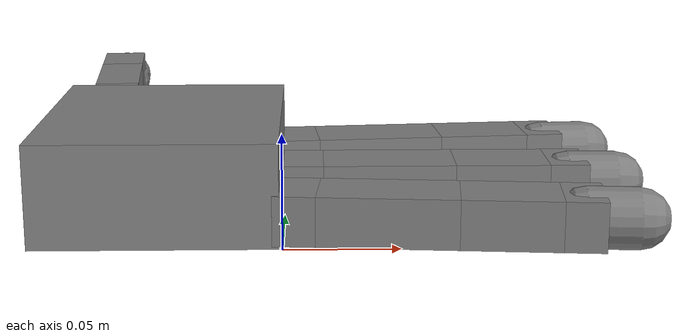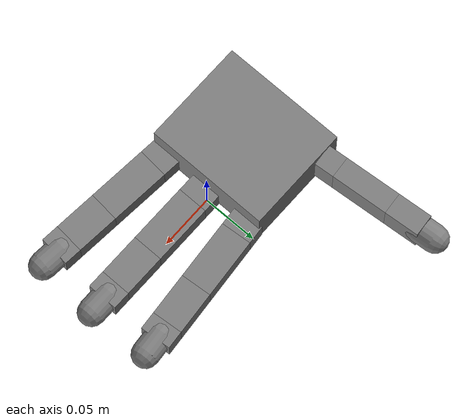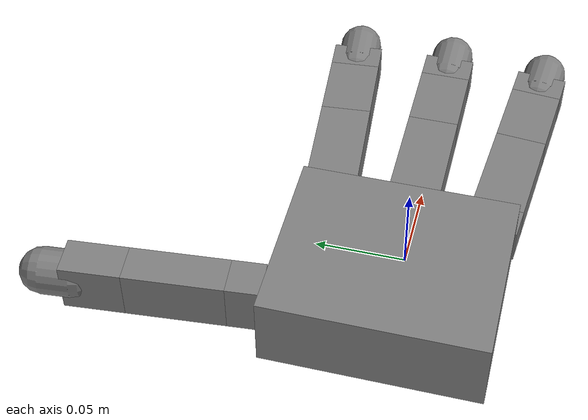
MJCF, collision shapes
<?xml version='1.0' encoding='utf-8'?>
<mujoco model="allegro_right">

    <compiler angle="radian" meshdir="assets" autolimits="true" />

    <option cone="elliptic" impratio="10" />

    <default>

      <default class="allegro_right">

        <joint axis="0 1 0" damping="0.1" />

        <position kp="1" />

        <geom density="800" />
      </default>

      <default class="visual">
        <geom type="mesh" contype="0" conaffinity="0" group="2" material="black" />
        <default class="palm_visual">
          <geom mesh="base_link" />
        </default>
        <default class="base_visual">
          <geom mesh="link_0.0" />
        </default>
        <default class="proximal_visual">
          <geom mesh="link_1.0" />
        </default>
        <default class="medial_visual">
          <geom mesh="link_2.0" />
        </default>
        <default class="distal_visual">
          <geom mesh="link_3.0" />
        </default>
        <default class="fingertip_visual">
          <geom pos="0 0 0.0267" material="white" mesh="link_3.0_tip" />
        </default>
        <default class="thumbtip_visual">
          <geom pos="0 0 0.0423" material="white" mesh="link_15.0_tip" />
        </default>
      </default>

      <default class="collision">

        <geom group="3" type="box" contype="3" conaffinity="1" friction="1 0.005 0.0001" density="800" />

        <default class="palm_collision">
          <geom size="0.0204 0.0565 0.0475" pos="-0.0093 0 -0.0475" />
        </default>

        <default class="base_collision">
          <geom size="0.0098 0.01375 0.0082" pos="0 0 0.0082" />
          <default class="thumb_base_collision">
            <geom size="0.0179 0.017 0.02275" pos="-0.0179 0.009 0.0145" />
          </default>
        </default>

        <default class="proximal_collision">
          <geom size="0.0098 0.01375 0.027" pos="0 0 0.027" />
          <default class="thumb_proximal_collision">
            <geom size="0.0098 0.01375 0.00885" pos="0 0 0.00885" />
          </default>
        </default>

        <default class="medial_collision">
          <geom size="0.0098 0.01375 0.0192" pos="0 0 0.0192" />
          <default class="thumb_medial_collision">
            <geom size="0.0098 0.01375 0.0257" pos="0 0 0.0257" />
          </default>
        </default>

        <default class="distal_collision">
          <geom size="0.0098 0.01375 0.008" pos="0 0 0.008" />
          <default class="thumb_distal_collision">
            <geom size="0.0098 0.01375 0.0157" pos="0 0 0.0157" />
          </default>
        </default>

        <default class="fingertip_collision">
          <geom type="capsule" size="0.012 0.01" pos="0 0 0.019" />
          <default class="thumbtip_collision">
            <geom type="capsule" size="0.012 0.008" pos="0 0 0.035" />
          </default>
        </default>
      </default>

      <default class="base">
        <joint axis="0 0 1" range="-0.47 0.47" />
        <position ctrlrange="-0.47 0.47" />
      </default>

      <default class="proximal">
        <joint range="-0.196 1.61" />
        <position ctrlrange="-0.196 1.61" />
      </default>

      <default class="medial">
        <joint range="-0.174 1.709" />
        <position ctrlrange="-0.174 1.709" />
      </default>

      <default class="distal">
        <joint range="-0.227 1.618" />
        <position ctrlrange="-0.227 1.618" />
      </default>

      <default class="thumb_base">
        <joint axis="-1 0 0" range="0.263 1.396" />
        <position ctrlrange="0.263 1.396" />
      </default>

      <default class="thumb_proximal">
        <joint axis="0 0 1" range="-0.105 1.163" />
        <position ctrlrange="-0.105 1.163" />
      </default>

      <default class="thumb_medial">
        <joint range="-0.189 1.644" />
        <position ctrlrange="-0.189 1.644" />
      </default>

      <default class="thumb_distal">
        <joint range="-0.162 1.719" />
        <position ctrlrange="-0.162 1.719" />
      </default>

    </default>

    <asset>
      <material name="black" rgba="0.2 0.2 0.2 1" />
      <material name="white" rgba="0.9 0.9 0.9 1" />

      <mesh file="base_link.stl" />
      <mesh file="link_0.0.stl" />
      <mesh file="link_1.0.stl" />
      <mesh file="link_2.0.stl" />
      <mesh file="link_3.0.stl" />
      <mesh file="link_3.0_tip.stl" />
      <mesh file="link_12.0_right.stl" />
      <mesh file="link_13.0.stl" />
      <mesh file="link_14.0.stl" />
      <mesh file="link_15.0.stl" />
      <mesh file="link_15.0_tip.stl" />
    </asset>

    <worldbody>

      <body name="palm" pos="0 0 0.03" quat="-0.7071067811865475 8.659560562354933e-17 -0.7071067811865476 -8.659560562354933e-17" childclass="allegro_right">
        <joint name="hand_root" type="free" />

        <geom class="palm_visual" mesh="base_link" />
        <geom class="palm_collision" />

        <body name="ff_base" pos="0 0.0435 -0.001542" quat="0.999048 -0.0436194 0 0">
          <joint name="ffj0" class="base" />
          <geom class="base_visual" />
          <geom class="base_collision" />
          <body name="ff_proximal" pos="0 0 0.0164">
            <joint name="ffj1" class="proximal" />
            <geom class="proximal_visual" />
            <geom class="proximal_collision" />
            <body name="ff_medial" pos="0 0 0.054">
              <joint name="ffj2" class="medial" />
              <geom class="medial_visual" />
              <geom class="medial_collision" />
              <body name="ff_distal" pos="0 0 0.0384">
                <joint name="ffj3" class="distal" />
                <geom class="distal_visual" />
                <geom class="distal_collision" />
                <body name="ff_tip">
                  <geom class="fingertip_visual" />
                  <geom class="fingertip_collision" />
                </body>
              </body>
            </body>
          </body>
        </body>

        <body name="mf_base" pos="0 0 0.0007">
          <joint name="mfj0" class="base" />
          <geom class="base_visual" />
          <geom class="base_collision" />
          <body name="mf_proximal" pos="0 0 0.0164">
            <joint name="mfj1" class="proximal" />
            <geom class="proximal_visual" />
            <geom class="proximal_collision" />
            <body name="mf_medial" pos="0 0 0.054">
              <joint name="mfj2" class="medial" />
              <geom class="medial_visual" />
              <geom class="medial_collision" />
              <body name="mf_distal" pos="0 0 0.0384">
                <joint name="mfj3" class="distal" />
                <geom class="distal_visual" />
                <geom class="distal_collision" />
                <body name="mf_tip">
                  <geom class="fingertip_visual" />
                  <geom class="fingertip_collision" />
                </body>
              </body>
            </body>
          </body>
        </body>

        <body name="rf_base" pos="0 -0.0435 -0.001542" quat="0.999048 0.0436194 0 0">
          <joint name="rfj0" class="base" />
          <geom class="base_visual" />
          <geom class="base_collision" />
          <body name="rf_proximal" pos="0 0 0.0164">
            <joint name="rfj1" class="proximal" />
            <geom class="proximal_visual" />
            <geom class="proximal_collision" />
            <body name="rf_medial" pos="0 0 0.054">
              <joint name="rfj2" class="medial" />
              <geom class="medial_visual" />
              <geom class="medial_collision" />
              <body name="rf_distal" pos="0 0 0.0384">
                <joint name="rfj3" class="distal" />
                <geom class="distal_visual" />
                <geom class="distal_collision" />
                <body name="rf_tip">
                  <geom class="fingertip_visual" />
                  <geom class="fingertip_collision" />
                </body>
              </body>
            </body>
          </body>
        </body>

        <body name="th_base" pos="-0.0182 0.019333 -0.045987" quat="0.477714 -0.521334 -0.521334 -0.477714">
          <joint name="thj0" class="thumb_base" />
          <geom class="visual" mesh="link_12.0_right" />
          <geom class="thumb_base_collision" />
          <body name="th_proximal" pos="-0.027 0.005 0.0399">
            <joint name="thj1" class="thumb_proximal" />
            <geom class="visual" mesh="link_13.0" />
            <geom class="thumb_proximal_collision" />
            <body name="th_medial" pos="0 0 0.0177">
              <joint name="thj2" class="thumb_medial" />
              <geom class="visual" mesh="link_14.0" />
              <geom class="thumb_medial_collision" />
              <body name="th_distal" pos="0 0 0.0514">
                <joint name="thj3" class="thumb_distal" />
                <geom class="visual" mesh="link_15.0" />
                <geom class="thumb_distal_collision" />
                <body name="th_tip">
                  <geom class="thumbtip_visual" />
                  <geom class="thumbtip_collision" />
                </body>
              </body>
            </body>
          </body>
        </body>

      </body>
    </worldbody>

    <contact>
      <exclude body1="palm" body2="ff_base" />
      <exclude body1="palm" body2="mf_base" />
      <exclude body1="palm" body2="rf_base" />
      <exclude body1="palm" body2="th_base" />
      <exclude body1="palm" body2="th_proximal" />
    </contact>

    <actuator>
      <position name="ffa0" joint="ffj0" class="base" />
      <position name="ffa1" joint="ffj1" class="proximal" />
      <position name="ffa2" joint="ffj2" class="medial" />
      <position name="ffa3" joint="ffj3" class="distal" />

      <position name="mfa0" joint="mfj0" class="base" />
      <position name="mfa1" joint="mfj1" class="proximal" />
      <position name="mfa2" joint="mfj2" class="medial" />
      <position name="mfa3" joint="mfj3" class="distal" />

      <position name="rfa0" joint="rfj0" class="base" />
      <position name="rfa1" joint="rfj1" class="proximal" />
      <position name="rfa2" joint="rfj2" class="medial" />
      <position name="rfa3" joint="rfj3" class="distal" />

      <position name="tha0" joint="thj0" class="thumb_base" />
      <position name="tha1" joint="thj1" class="thumb_proximal" />
      <position name="tha2" joint="thj2" class="thumb_medial" />
      <position name="tha3" joint="thj3" class="thumb_distal" />
    </actuator>

</mujoco>
